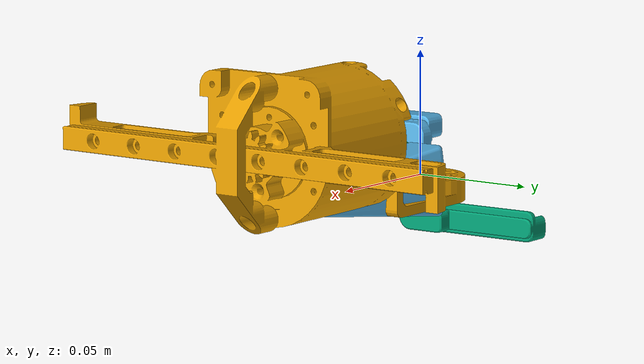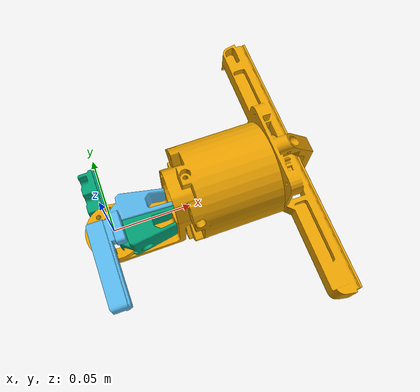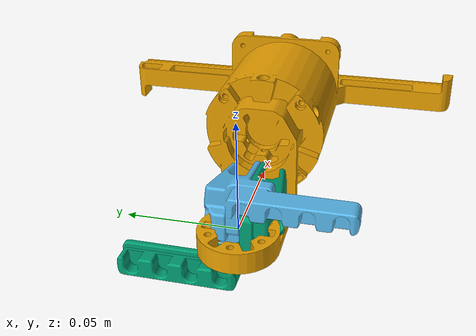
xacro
<?xml version="1.0"?>

<robot name="Galaxea_Gripper" xmlns:xacro="http://www.ros.org/wiki/xacro">

  <xacro:arg name="type" default="g1"/>

  <xacro:if value="${'$(arg type)' == 'g1'}">
    <xacro:include filename="$(find galaxea_a1_description)/xacro/gripper_g1.xacro"/>
  </xacro:if>
  <xacro:if value="${'$(arg type)' == 'g1z'}">
    <xacro:include filename="$(find galaxea_a1_description)/xacro/gripper_g1z.xacro"/>
  </xacro:if>

  <xacro:Gripper name=""/>
</robot>

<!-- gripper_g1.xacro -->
<robot xmlns:xacro="http://www.ros.org/wiki/xacro">
  <xacro:property name="PI" value="3.1415926535897931"/>
  <xacro:macro name="Gripper" params="name">

    <xacro:property name="prefix" value="${name + '_' if name else ''}"/>

    <link name="${prefix}gripper_base">
      <inertial>
        <origin xyz="-0.0311072323899603 1.17979991887118E-08 7.93394685505433E-08"/>
        <mass value="0.604"/>
        <inertia
            ixx="0.000175881544189539"
            ixy="-6.06026450851008E-11"
            ixz="5.30643405624365E-10"
            iyy="9.86379407701341E-05"
            iyz="-8.18686692495892E-08"
            izz="0.000165121280580029"/>
      </inertial>
      <visual>
        <geometry>
          <mesh filename="file://$(find galaxea_a1_description)/meshes/gripper/gripper_base.glb"/>
        </geometry>
      </visual>
      <collision>
        <geometry>
          <mesh filename="file://$(find galaxea_a1_description)/meshes/gripper/gripper_base.glb"/>
        </geometry>
      </collision>
    </link>

    <link name="${prefix}finger1">
      <inertial>
        <origin xyz="-0.0195895895552112 -0.0151136845490034 0.00542254359093075"/>
        <mass value="0.027"/>
        <inertia
            ixx="2.40569358477209E-06"
            ixy="3.9898459609048E-07"
            ixz="5.12152762183641E-08"
            iyy="5.71079298307516E-06"
            iyz="6.19467902008363E-08"
            izz="6.48482183930358E-06"/>
      </inertial>
      <visual>
        <geometry>
          <mesh filename="file://$(find galaxea_a1_description)/meshes/gripper/finger.glb"/>
        </geometry>
      </visual>
      <collision>
        <geometry>
          <mesh filename="file://$(find galaxea_a1_description)/meshes/gripper/finger.glb"/>
        </geometry>
      </collision>
    </link>

    <joint name="${prefix}gripper_joint" type="prismatic">
      <origin xyz="0.03689 0.013453 0.00012059"/>
      <parent link="${prefix}gripper_base"/>
      <child link="${prefix}finger1"/>
      <axis xyz="0 1 0"/>
      <limit lower="0" upper="0.05" effort="10" velocity="0.25"/>
    </joint>

    <link name="${prefix}finger2">
      <inertial>
        <origin xyz="-0.0195895857999098 0.0151136893508115 -0.00542254357246619"/>
        <mass value="0.027"/>
        <inertia
            ixx="2.40569340151687E-06"
            ixy="-3.98983784827124E-07"
            ixz="-5.12152683073981E-08"
            iyy="5.71079321589929E-06"
            iyz="6.19467953006536E-08"
            izz="6.48482187274222E-06"/>
      </inertial>
      <visual>
        <geometry>
          <mesh filename="file://$(find galaxea_a1_description)/meshes/gripper/finger.glb" scale="1 -1 -1"/>
        </geometry>
      </visual>
      <collision>
        <geometry>
          <mesh filename="file://$(find galaxea_a1_description)/meshes/gripper/finger.glb" scale="1 -1 -1"/>
        </geometry>
      </collision>
    </link>

    <joint name="${prefix}gripper_joint2" type="prismatic">
      <origin xyz="0.03689 -0.013453 -0.00012059"/>
      <parent link="${prefix}gripper_base"/>
      <child link="${prefix}finger2"/>
      <axis xyz="0 -1 0"/>
      <limit lower="0" upper="0.05" effort="10" velocity="0.25"/>
      <mimic joint="${prefix}gripper_joint" multiplier="1" offset="0"/>
    </joint>

    <link name="${prefix}gripper_center"/>

    <joint name="${prefix}gripper_center_joint" type="fixed">
      <origin xyz="0.03689 0 -0.00012059"/>
      <parent link="${prefix}gripper_base"/>
      <child link="${prefix}gripper_center"/>
    </joint>

  </xacro:macro>
</robot>
